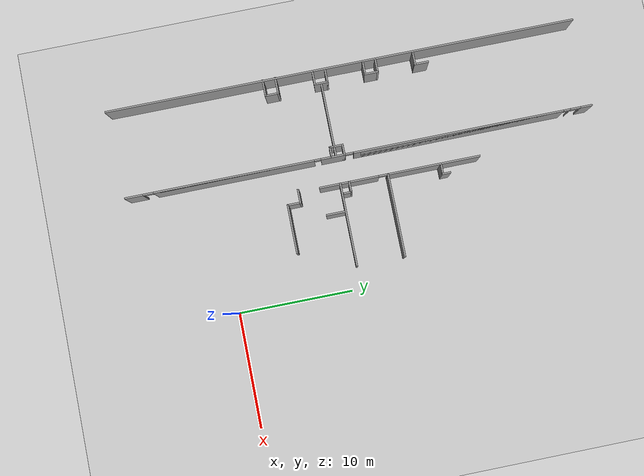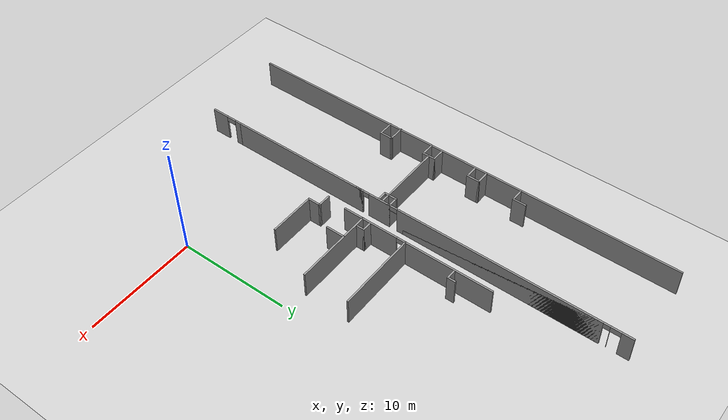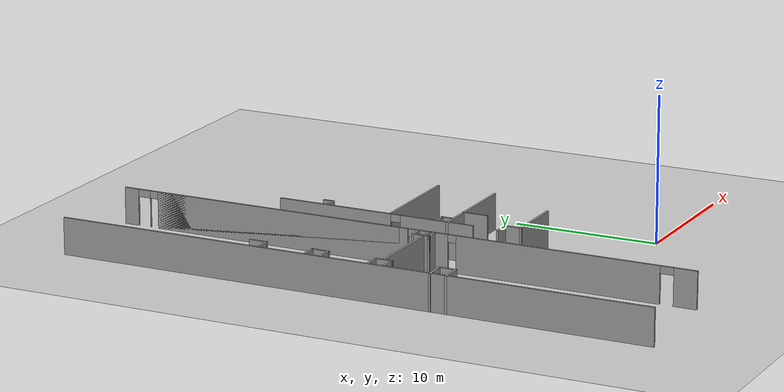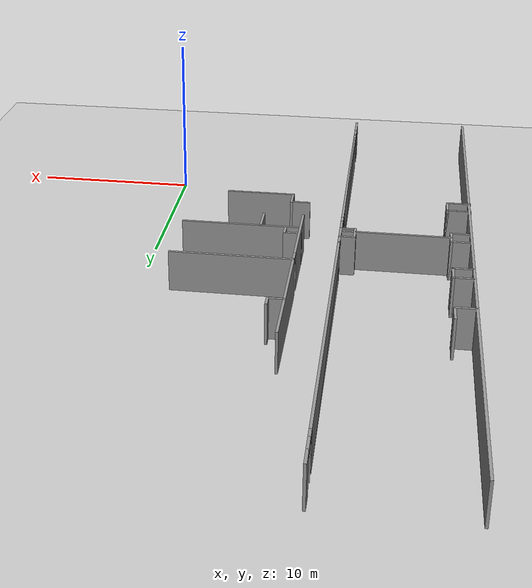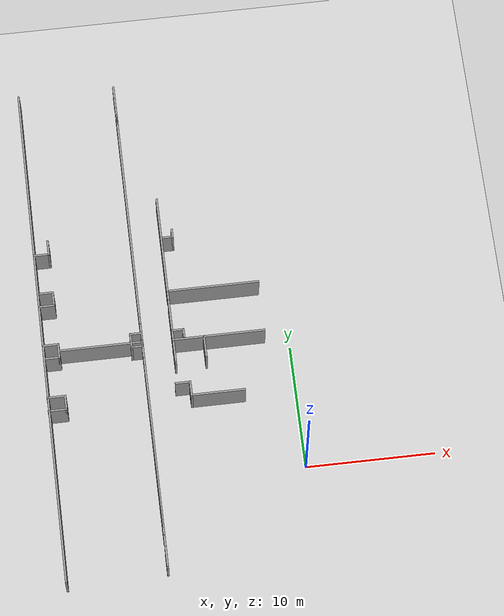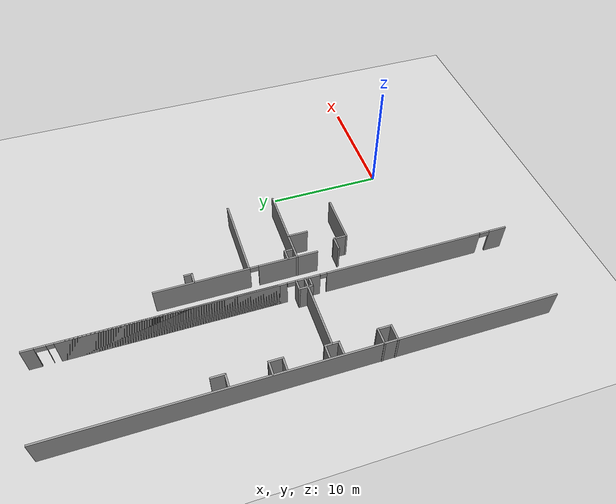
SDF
<sdf version="1.6">
 <world name="default">
  <model name="ground_plane">
   <static>1</static>
   <link name="link">
    <collision name="collision">
     <geometry><plane><normal>0 0 1</normal><size>100 100</size></plane></geometry>
     <surface>
      <contact><collide_bitmask>65535</collide_bitmask></contact>
      <friction><ode><mu>100</mu><mu2>50</mu2></ode></friction>
     </surface>
    </collision>
    <visual name="visual">
     <cast_shadows>0</cast_shadows>
     <geometry><plane><normal>0 0 1</normal><size>100 100</size></plane></geometry>
     <material>
      <script><uri>file://media/materials/scripts/gazebo.material</uri><name>Gazebo/Grey</name></script>
     </material>
    </visual>
   </link>
  </model>
  <model name="Tsudanuma_2-3-with_door">
   <pose>11.7222 12.8329 0 0 -0 0</pose>
   <link name="Wall_0">
    <collision name="Wall_0_Collision">
     <geometry><box><size>41.115 0.15 2.5</size></box></geometry>
     <pose>0 0 1.25 0 -0 0</pose>
    </collision>
    <visual name="Wall_0_Visual">
     <pose>0 0 1.25 0 -0 0</pose>
     <geometry><box><size>41.115 0.15 2.5</size></box></geometry>
     <material>
      <script><uri>file://media/materials/scripts/gazebo.material</uri><name>Gazebo/Grey</name></script>
      <ambient>1 1 1 1</ambient>
     </material>
     <meta><layer>0</layer></meta>
    </visual>
    <pose>-30.8385 -0.07469 0 0 -0 -1.5708</pose>
   </link>
   <link name="Wall_120">
    <pose>-20.7694 3.09917 0 0 -0 -1.5708</pose>
    <visual name="Wall_120_Visual_0">
     <pose>-2.94482 0 1.25 0 -0 0</pose>
     <geometry><box><size>8.11037 0.15 2.5</size></box></geometry>
     <material>
      <script><uri>file://media/materials/scripts/gazebo.material</uri><name>Gazebo/Grey</name></script>
      <ambient>1 1 1 1</ambient>
     </material>
     <meta><layer>0</layer></meta>
    </visual>
    <collision name="Wall_120_Collision_0">
     <geometry><box><size>8.11037 0.15 2.5</size></box></geometry>
     <pose>-2.94482 0 1.25 0 -0 0</pose>
    </collision>
    <visual name="Wall_120_Visual_1">
     <pose>4.41443 0 1.25 0 -0 0</pose>
     <geometry><box><size>5.17113 0.15 2.5</size></box></geometry>
     <material>
      <script><uri>file://media/materials/scripts/gazebo.material</uri><name>Gazebo/Grey</name></script>
      <ambient>1 1 1 1</ambient>
     </material>
     <meta><layer>0</layer></meta>
    </visual>
    <collision name="Wall_120_Collision_1">
     <geometry><box><size>5.17113 0.15 2.5</size></box></geometry>
     <pose>4.41443 0 1.25 0 -0 0</pose>
    </collision>
    <visual name="Wall_120_Visual_2">
     <pose>1.46962 0 2.25 0 -0 0</pose>
     <geometry><box><size>0.7185 0.15 0.5</size></box></geometry>
     <material>
      <script><uri>file://media/materials/scripts/gazebo.material</uri><name>Gazebo/Grey</name></script>
      <ambient>1 1 1 1</ambient>
     </material>
     <meta><layer>0</layer></meta>
    </visual>
    <collision name="Wall_120_Collision_2">
     <geometry><box><size>0.7185 0.15 0.5</size></box></geometry>
     <pose>1.46962 0 2.25 0 -0 0</pose>
    </collision>
   </link>
   <link name="Wall_130">
    <collision name="Wall_130_Collision">
     <geometry><box><size>7.25 0.15 2.5</size></box></geometry>
     <pose>0 0 1.25 0 -0 0</pose>
    </collision>
    <visual name="Wall_130_Visual">
     <pose>0 0 1.25 0 -0 0</pose>
     <geometry><box><size>7.25 0.15 2.5</size></box></geometry>
     <material>
      <script><uri>file://media/materials/scripts/gazebo.material</uri><name>Gazebo/Grey</name></script>
      <ambient>1 1 1 1</ambient>
     </material>
     <meta><layer>0</layer></meta>
    </visual>
    <pose>-17.2305 -2.06927 0 0 -0 0</pose>
   </link>
   <link name="Wall_132">
    <collision name="Wall_132_Collision">
     <geometry><box><size>1 0.15 2.5</size></box></geometry>
     <pose>0 0 1.25 0 -0 0</pose>
    </collision>
    <visual name="Wall_132_Visual">
     <pose>0 0 1.25 0 -0 0</pose>
     <geometry><box><size>1 0.15 2.5</size></box></geometry>
     <material>
      <script><uri>file://media/materials/scripts/gazebo.material</uri><name>Gazebo/Grey</name></script>
      <ambient>1 1 1 1</ambient>
     </material>
     <meta><layer>0</layer></meta>
    </visual>
    <pose>-20.3175 -1.29143 0 0 -0 0</pose>
   </link>
   <link name="Wall_133">
    <collision name="Wall_133_Collision">
     <geometry><box><size>0.75 0.15 2.5</size></box></geometry>
     <pose>0 0 1.25 0 -0 0</pose>
    </collision>
    <visual name="Wall_133_Visual">
     <pose>0 0 1.25 0 -0 0</pose>
     <geometry><box><size>0.75 0.15 2.5</size></box></geometry>
     <material>
      <script><uri>file://media/materials/scripts/gazebo.material</uri><name>Gazebo/Grey</name></script>
      <ambient>1 1 1 1</ambient>
     </material>
     <meta><layer>0</layer></meta>
    </visual>
    <pose>-19.8925 -1.59143 0 0 -0 -1.5708</pose>
   </link>
   <link name="Wall_138">
    <collision name="Wall_138_Collision">
     <geometry><box><size>1.75 0.15 2.5</size></box></geometry>
     <pose>0 0 1.25 0 -0 0</pose>
    </collision>
    <visual name="Wall_138_Visual">
     <pose>0 0 1.25 0 -0 0</pose>
     <geometry><box><size>1.75 0.15 2.5</size></box></geometry>
     <material>
      <script><uri>file://media/materials/scripts/gazebo.material</uri><name>Gazebo/Grey</name></script>
      <ambient>1 1 1 1</ambient>
     </material>
     <meta><layer>0</layer></meta>
    </visual>
    <pose>-18.3711 -2.90721 0 0 -0 -1.5708</pose>
   </link>
   <link name="Wall_140">
    <collision name="Wall_140_Collision">
     <geometry><box><size>4.25 0.15 2.5</size></box></geometry>
     <pose>0 0 1.25 0 -0 0</pose>
    </collision>
    <visual name="Wall_140_Visual">
     <pose>0 0 1.25 0 -0 0</pose>
     <geometry><box><size>4.25 0.15 2.5</size></box></geometry>
     <material>
      <script><uri>file://media/materials/scripts/gazebo.material</uri><name>Gazebo/Grey</name></script>
      <ambient>1 1 1 1</ambient>
     </material>
     <meta><layer>0</layer></meta>
    </visual>
    <pose>-17.8074 -6.80767 0 0 -0 3.14159</pose>
   </link>
   <link name="Wall_141">
    <collision name="Wall_141_Collision">
     <geometry><box><size>1.25 0.15 2.5</size></box></geometry>
     <pose>0 0 1.25 0 -0 0</pose>
    </collision>
    <visual name="Wall_141_Visual">
     <pose>0 0 1.25 0 -0 0</pose>
     <geometry><box><size>1.25 0.15 2.5</size></box></geometry>
     <material>
      <script><uri>file://media/materials/scripts/gazebo.material</uri><name>Gazebo/Grey</name></script>
      <ambient>1 1 1 1</ambient>
     </material>
     <meta><layer>0</layer></meta>
    </visual>
    <pose>-19.8574 -6.25767 0 0 -0 1.5708</pose>
   </link>
   <link name="Wall_142">
    <collision name="Wall_142_Collision">
     <geometry><box><size>1.25 0.15 2.5</size></box></geometry>
     <pose>0 0 1.25 0 -0 0</pose>
    </collision>
    <visual name="Wall_142_Visual">
     <pose>0 0 1.25 0 -0 0</pose>
     <geometry><box><size>1.25 0.15 2.5</size></box></geometry>
     <material>
      <script><uri>file://media/materials/scripts/gazebo.material</uri><name>Gazebo/Grey</name></script>
      <ambient>1 1 1 1</ambient>
     </material>
     <meta><layer>0</layer></meta>
    </visual>
    <pose>-20.4074 -5.70767 0 0 -0 3.14159</pose>
   </link>
   <link name="Wall_32">
    <pose>-23.1721 0.089962 0 0 -0 1.5708</pose>
    <visual name="Wall_32_Visual_0">
     <pose>-19.5884 0 1.25 0 -0 0</pose>
     <geometry><box><size>1.57322 0.15 2.5</size></box></geometry>
     <material>
      <script><uri>file://media/materials/scripts/gazebo.material</uri><name>Gazebo/Grey</name></script>
      <ambient>1 1 1 1</ambient>
     </material>
     <meta><layer>0</layer></meta>
    </visual>
    <collision name="Wall_32_Collision_0">
     <geometry><box><size>1.57322 0.15 2.5</size></box></geometry>
     <pose>-19.5884 0 1.25 0 -0 0</pose>
    </collision>
    <visual name="Wall_32_Visual_1">
     <pose>-10.9195 0 1.25 0 -0 0</pose>
     <geometry><box><size>13.9449 0.15 2.5</size></box></geometry>
     <material>
      <script><uri>file://media/materials/scripts/gazebo.material</uri><name>Gazebo/Grey</name></script>
      <ambient>1 1 1 1</ambient>
     </material>
     <meta><layer>0</layer></meta>
    </visual>
    <collision name="Wall_32_Collision_1">
     <geometry><box><size>13.9449 0.15 2.5</size></box></geometry>
     <pose>-10.9195 0 1.25 0 -0 0</pose>
    </collision>
    <visual name="Wall_32_Visual_2">
     <pose>-10.6328 0 1.25 0 -0 0</pose>
     <geometry><box><size>13.3715 0.15 2.5</size></box></geometry>
     <material>
      <script><uri>file://media/materials/scripts/gazebo.material</uri><name>Gazebo/Grey</name></script>
      <ambient>1 1 1 1</ambient>
     </material>
     <meta><layer>0</layer></meta>
    </visual>
    <collision name="Wall_32_Collision_2">
     <geometry><box><size>13.3715 0.15 2.5</size></box></geometry>
     <pose>-10.6328 0 1.25 0 -0 0</pose>
    </collision>
    <visual name="Wall_32_Visual_3">
     <pose>-2.30756 0 1.25 0 -0 0</pose>
     <geometry><box><size>2.12716 0.15 2.5</size></box></geometry>
     <material>
      <script><uri>file://media/materials/scripts/gazebo.material</uri><name>Gazebo/Grey</name></script>
      <ambient>1 1 1 1</ambient>
     </material>
     <meta><layer>0</layer></meta>
    </visual>
    <collision name="Wall_32_Collision_3">
     <geometry><box><size>2.12716 0.15 2.5</size></box></geometry>
     <pose>-2.30756 0 1.25 0 -0 0</pose>
    </collision>
    <visual name="Wall_32_Visual_4">
     <pose>-1.86029 0 1.25 0 -0 0</pose>
     <geometry><box><size>1.23262 0.15 2.5</size></box></geometry>
     <material>
      <script><uri>file://media/materials/scripts/gazebo.material</uri><name>Gazebo/Grey</name></script>
      <ambient>1 1 1 1</ambient>
     </material>
     <meta><layer>0</layer></meta>
    </visual>
    <collision name="Wall_32_Collision_4">
     <geometry><box><size>1.23262 0.15 2.5</size></box></geometry>
     <pose>-1.86029 0 1.25 0 -0 0</pose>
    </collision>
    <visual name="Wall_32_Visual_5">
     <pose>8.66346 0 1.25 0 -0 0</pose>
     <geometry><box><size>18.4038 0.15 2.5</size></box></geometry>
     <material>
      <script><uri>file://media/materials/scripts/gazebo.material</uri><name>Gazebo/Grey</name></script>
      <ambient>1 1 1 1</ambient>
     </material>
     <meta><layer>0</layer></meta>
    </visual>
    <collision name="Wall_32_Collision_5">
     <geometry><box><size>18.4038 0.15 2.5</size></box></geometry>
     <pose>8.66346 0 1.25 0 -0 0</pose>
    </collision>
    <visual name="Wall_32_Visual_6">
     <pose>8.97461 0 1.25 0 -0 0</pose>
     <geometry><box><size>17.7815 0.15 2.5</size></box></geometry>
     <material>
      <script><uri>file://media/materials/scripts/gazebo.material</uri><name>Gazebo/Grey</name></script>
      <ambient>1 1 1 1</ambient>
     </material>
     <meta><layer>0</layer></meta>
    </visual>
    <collision name="Wall_32_Collision_6">
     <geometry><box><size>17.7815 0.15 2.5</size></box></geometry>
     <pose>8.97461 0 1.25 0 -0 0</pose>
    </collision>
    <visual name="Wall_32_Visual_7">
     <pose>18.4418 0 1.25 0 -0 0</pose>
     <geometry><box><size>0.001017 0.15 2.5</size></box></geometry>
     <material>
      <script><uri>file://media/materials/scripts/gazebo.material</uri><name>Gazebo/Grey</name></script>
      <ambient>1 1 1 1</ambient>
     </material>
     <meta><layer>0</layer></meta>
    </visual>
    <collision name="Wall_32_Collision_7">
     <geometry><box><size>0.001017 0.15 2.5</size></box></geometry>
     <pose>18.4418 0 1.25 0 -0 0</pose>
    </collision>
    <visual name="Wall_32_Visual_8">
     <pose>19.8586 0 1.25 0 -0 0</pose>
     <geometry><box><size>1.03272 0.15 2.5</size></box></geometry>
     <material>
      <script><uri>file://media/materials/scripts/gazebo.material</uri><name>Gazebo/Grey</name></script>
      <ambient>1 1 1 1</ambient>
     </material>
     <meta><layer>0</layer></meta>
    </visual>
    <collision name="Wall_32_Collision_8">
     <geometry><box><size>1.03272 0.15 2.5</size></box></geometry>
     <pose>19.8586 0 1.25 0 -0 0</pose>
    </collision>
    <visual name="Wall_32_Visual_9">
     <pose>-18.3533 0 2.25 0 -0 0</pose>
     <geometry><box><size>0.896961 0.15 0.5</size></box></geometry>
     <material>
      <script><uri>file://media/materials/scripts/gazebo.material</uri><name>Gazebo/Grey</name></script>
      <ambient>1 1 1 1</ambient>
     </material>
     <meta><layer>0</layer></meta>
    </visual>
    <collision name="Wall_32_Collision_9">
     <geometry><box><size>0.896961 0.15 0.5</size></box></geometry>
     <pose>-18.3533 0 2.25 0 -0 0</pose>
    </collision>
    <visual name="Wall_32_Visual_10">
     <pose>-3.66182 0 2.25 0 -0 0</pose>
     <geometry><box><size>0.570428 0.15 0.5</size></box></geometry>
     <material>
      <script><uri>file://media/materials/scripts/gazebo.material</uri><name>Gazebo/Grey</name></script>
      <ambient>1 1 1 1</ambient>
     </material>
     <meta><layer>0</layer></meta>
    </visual>
    <collision name="Wall_32_Collision_10">
     <geometry><box><size>0.570428 0.15 0.5</size></box></geometry>
     <pose>-3.66182 0 2.25 0 -0 0</pose>
    </collision>
    <visual name="Wall_32_Visual_11">
     <pose>-3.66182 0 2.25 0 -0 0</pose>
     <geometry><box><size>0.570428 0.15 0.5</size></box></geometry>
     <material>
      <script><uri>file://media/materials/scripts/gazebo.material</uri><name>Gazebo/Grey</name></script>
      <ambient>1 1 1 1</ambient>
     </material>
     <meta><layer>0</layer></meta>
    </visual>
    <collision name="Wall_32_Collision_11">
     <geometry><box><size>0.570428 0.15 0.5</size></box></geometry>
     <pose>-3.66182 0 2.25 0 -0 0</pose>
    </collision>
    <visual name="Wall_32_Visual_12">
     <pose>-0.900425 0 2.25 0 -0 0</pose>
     <geometry><box><size>0.687107 0.15 0.5</size></box></geometry>
     <material>
      <script><uri>file://media/materials/scripts/gazebo.material</uri><name>Gazebo/Grey</name></script>
      <ambient>1 1 1 1</ambient>
     </material>
     <meta><layer>0</layer></meta>
    </visual>
    <collision name="Wall_32_Collision_12">
     <geometry><box><size>0.687107 0.15 0.5</size></box></geometry>
     <pose>-0.900425 0 2.25 0 -0 0</pose>
    </collision>
    <visual name="Wall_32_Visual_13">
     <pose>-0.900425 0 2.25 0 -0 0</pose>
     <geometry><box><size>0.687107 0.15 0.5</size></box></geometry>
     <material>
      <script><uri>file://media/materials/scripts/gazebo.material</uri><name>Gazebo/Grey</name></script>
      <ambient>1 1 1 1</ambient>
     </material>
     <meta><layer>0</layer></meta>
    </visual>
    <collision name="Wall_32_Collision_13">
     <geometry><box><size>0.687107 0.15 0.5</size></box></geometry>
     <pose>-0.900425 0 2.25 0 -0 0</pose>
    </collision>
    <visual name="Wall_32_Visual_14">
     <pose>18.1533 0 2.25 0 -0 0</pose>
     <geometry><box><size>0.575893 0.15 0.5</size></box></geometry>
     <material>
      <script><uri>file://media/materials/scripts/gazebo.material</uri><name>Gazebo/Grey</name></script>
      <ambient>1 1 1 1</ambient>
     </material>
     <meta><layer>0</layer></meta>
    </visual>
    <collision name="Wall_32_Collision_14">
     <geometry><box><size>0.575893 0.15 0.5</size></box></geometry>
     <pose>18.1533 0 2.25 0 -0 0</pose>
    </collision>
    <visual name="Wall_32_Visual_15">
     <pose>18.1533 0 2.25 0 -0 0</pose>
     <geometry><box><size>0.575893 0.15 0.5</size></box></geometry>
     <material>
      <script><uri>file://media/materials/scripts/gazebo.material</uri><name>Gazebo/Grey</name></script>
      <ambient>1 1 1 1</ambient>
     </material>
     <meta><layer>0</layer></meta>
    </visual>
    <collision name="Wall_32_Collision_15">
     <geometry><box><size>0.575893 0.15 0.5</size></box></geometry>
     <pose>18.1533 0 2.25 0 -0 0</pose>
    </collision>
    <visual name="Wall_32_Visual_16">
     <pose>18.8923 0 2.25 0 -0 0</pose>
     <geometry><box><size>0.9 0.15 0.5</size></box></geometry>
     <material>
      <script><uri>file://media/materials/scripts/gazebo.material</uri><name>Gazebo/Grey</name></script>
      <ambient>1 1 1 1</ambient>
     </material>
     <meta><layer>0</layer></meta>
    </visual>
    <collision name="Wall_32_Collision_16">
     <geometry><box><size>0.9 0.15 0.5</size></box></geometry>
     <pose>18.8923 0 2.25 0 -0 0</pose>
    </collision>
   </link>
   <link name="Wall_464">
    <collision name="Wall_464_Collision">
     <geometry><box><size>1.5 0.15 2.5</size></box></geometry>
     <pose>0 0 1.25 0 -0 0</pose>
    </collision>
    <visual name="Wall_464_Visual">
     <pose>0 0 1.25 0 -0 0</pose>
     <geometry><box><size>1.5 0.15 2.5</size></box></geometry>
     <material>
      <script><uri>file://media/materials/scripts/gazebo.material</uri><name>Gazebo/Grey</name></script>
      <ambient>1 1 1 1</ambient>
     </material>
     <meta><layer>0</layer></meta>
    </visual>
    <pose>-30.1953 -6.84893 0 0 -0 0</pose>
   </link>
   <link name="Wall_465">
    <collision name="Wall_465_Collision">
     <geometry><box><size>1.25 0.15 2.5</size></box></geometry>
     <pose>0 0 1.25 0 -0 0</pose>
    </collision>
    <visual name="Wall_465_Visual">
     <pose>0 0 1.25 0 -0 0</pose>
     <geometry><box><size>1.25 0.15 2.5</size></box></geometry>
     <material>
      <script><uri>file://media/materials/scripts/gazebo.material</uri><name>Gazebo/Grey</name></script>
      <ambient>1 1 1 1</ambient>
     </material>
     <meta><layer>0</layer></meta>
    </visual>
    <pose>-29.5203 -6.29893 0 0 -0 1.5708</pose>
   </link>
   <link name="Wall_466">
    <collision name="Wall_466_Collision">
     <geometry><box><size>1.5 0.15 2.5</size></box></geometry>
     <pose>0 0 1.25 0 -0 0</pose>
    </collision>
    <visual name="Wall_466_Visual">
     <pose>0 0 1.25 0 -0 0</pose>
     <geometry><box><size>1.5 0.15 2.5</size></box></geometry>
     <material>
      <script><uri>file://media/materials/scripts/gazebo.material</uri><name>Gazebo/Grey</name></script>
      <ambient>1 1 1 1</ambient>
     </material>
     <meta><layer>0</layer></meta>
    </visual>
    <pose>-30.1953 -5.74893 0 0 -0 3.14159</pose>
   </link>
   <link name="Wall_468">
    <collision name="Wall_468_Collision">
     <geometry><box><size>1.25 0.15 2.5</size></box></geometry>
     <pose>0 0 1.25 0 -0 0</pose>
    </collision>
    <visual name="Wall_468_Visual">
     <pose>0 0 1.25 0 -0 0</pose>
     <geometry><box><size>1.25 0.15 2.5</size></box></geometry>
     <material>
      <script><uri>file://media/materials/scripts/gazebo.material</uri><name>Gazebo/Grey</name></script>
      <ambient>1 1 1 1</ambient>
     </material>
     <meta><layer>0</layer></meta>
    </visual>
    <pose>-30.2135 -2.5084 0 0 -0 0</pose>
   </link>
   <link name="Wall_470">
    <collision name="Wall_470_Collision">
     <geometry><box><size>1.25 0.15 2.5</size></box></geometry>
     <pose>0 0 1.25 0 -0 0</pose>
    </collision>
    <visual name="Wall_470_Visual">
     <pose>0 0 1.25 0 -0 0</pose>
     <geometry><box><size>1.25 0.15 2.5</size></box></geometry>
     <material>
      <script><uri>file://media/materials/scripts/gazebo.material</uri><name>Gazebo/Grey</name></script>
      <ambient>1 1 1 1</ambient>
     </material>
     <meta><layer>0</layer></meta>
    </visual>
    <pose>-29.6635 -1.9584 0 0 -0 1.5708</pose>
   </link>
   <link name="Wall_471">
    <collision name="Wall_471_Collision">
     <geometry><box><size>1.25 0.15 2.5</size></box></geometry>
     <pose>0 0 1.25 0 -0 0</pose>
    </collision>
    <visual name="Wall_471_Visual">
     <pose>0 0 1.25 0 -0 0</pose>
     <geometry><box><size>1.25 0.15 2.5</size></box></geometry>
     <material>
      <script><uri>file://media/materials/scripts/gazebo.material</uri><name>Gazebo/Grey</name></script>
      <ambient>1 1 1 1</ambient>
     </material>
     <meta><layer>0</layer></meta>
    </visual>
    <pose>-30.2135 -1.4084 0 0 -0 3.14159</pose>
   </link>
   <link name="Wall_474">
    <collision name="Wall_474_Collision">
     <geometry><box><size>1.25 0.15 2.5</size></box></geometry>
     <pose>0 0 1.25 0 -0 0</pose>
    </collision>
    <visual name="Wall_474_Visual">
     <pose>0 0 1.25 0 -0 0</pose>
     <geometry><box><size>1.25 0.15 2.5</size></box></geometry>
     <material>
      <script><uri>file://media/materials/scripts/gazebo.material</uri><name>Gazebo/Grey</name></script>
      <ambient>1 1 1 1</ambient>
     </material>
     <meta><layer>0</layer></meta>
    </visual>
    <pose>-30.2299 1.90612 0 0 -0 0</pose>
   </link>
   <link name="Wall_475">
    <collision name="Wall_475_Collision">
     <geometry><box><size>1.25 0.15 2.5</size></box></geometry>
     <pose>0 0 1.25 0 -0 0</pose>
    </collision>
    <visual name="Wall_475_Visual">
     <pose>0 0 1.25 0 -0 0</pose>
     <geometry><box><size>1.25 0.15 2.5</size></box></geometry>
     <material>
      <script><uri>file://media/materials/scripts/gazebo.material</uri><name>Gazebo/Grey</name></script>
      <ambient>1 1 1 1</ambient>
     </material>
     <meta><layer>0</layer></meta>
    </visual>
    <pose>-29.6799 2.45612 0 0 -0 1.5708</pose>
   </link>
   <link name="Wall_476">
    <collision name="Wall_476_Collision">
     <geometry><box><size>1.25 0.15 2.5</size></box></geometry>
     <pose>0 0 1.25 0 -0 0</pose>
    </collision>
    <visual name="Wall_476_Visual">
     <pose>0 0 1.25 0 -0 0</pose>
     <geometry><box><size>1.25 0.15 2.5</size></box></geometry>
     <material>
      <script><uri>file://media/materials/scripts/gazebo.material</uri><name>Gazebo/Grey</name></script>
      <ambient>1 1 1 1</ambient>
     </material>
     <meta><layer>0</layer></meta>
    </visual>
    <pose>-30.2299 3.00612 0 0 -0 3.14159</pose>
   </link>
   <link name="Wall_478">
    <collision name="Wall_478_Collision">
     <geometry><box><size>1.25 0.15 2.5</size></box></geometry>
     <pose>0 0 1.25 0 -0 0</pose>
    </collision>
    <visual name="Wall_478_Visual">
     <pose>0 0 1.25 0 -0 0</pose>
     <geometry><box><size>1.25 0.15 2.5</size></box></geometry>
     <material>
      <script><uri>file://media/materials/scripts/gazebo.material</uri><name>Gazebo/Grey</name></script>
      <ambient>1 1 1 1</ambient>
     </material>
     <meta><layer>0</layer></meta>
    </visual>
    <pose>-30.2299 6.30419 0 0 -0 0</pose>
   </link>
   <link name="Wall_479">
    <collision name="Wall_479_Collision">
     <geometry><box><size>1.25 0.15 2.5</size></box></geometry>
     <pose>0 0 1.25 0 -0 0</pose>
    </collision>
    <visual name="Wall_479_Visual">
     <pose>0 0 1.25 0 -0 0</pose>
     <geometry><box><size>1.25 0.15 2.5</size></box></geometry>
     <material>
      <script><uri>file://media/materials/scripts/gazebo.material</uri><name>Gazebo/Grey</name></script>
      <ambient>1 1 1 1</ambient>
     </material>
     <meta><layer>0</layer></meta>
    </visual>
    <pose>-29.6799 6.85419 0 0 -0 1.5708</pose>
   </link>
   <link name="Wall_503">
    <collision name="Wall_503_Collision">
     <geometry><box><size>1 0.15 2.5</size></box></geometry>
     <pose>0 0 1.25 0 -0 0</pose>
    </collision>
    <visual name="Wall_503_Visual">
     <pose>0 0 1.25 0 -0 0</pose>
     <geometry><box><size>1 0.15 2.5</size></box></geometry>
     <material>
      <script><uri>file://media/materials/scripts/gazebo.material</uri><name>Gazebo/Grey</name></script>
      <ambient>1 1 1 1</ambient>
     </material>
     <meta><layer>0</layer></meta>
    </visual>
    <pose>-23.6051 -1.22621 0 0 -0 3.14159</pose>
   </link>
   <link name="Wall_504">
    <collision name="Wall_504_Collision">
     <geometry><box><size>1.25 0.15 2.5</size></box></geometry>
     <pose>0 0 1.25 0 -0 0</pose>
    </collision>
    <visual name="Wall_504_Visual">
     <pose>0 0 1.25 0 -0 0</pose>
     <geometry><box><size>1.25 0.15 2.5</size></box></geometry>
     <material>
      <script><uri>file://media/materials/scripts/gazebo.material</uri><name>Gazebo/Grey</name></script>
      <ambient>1 1 1 1</ambient>
     </material>
     <meta><layer>0</layer></meta>
    </visual>
    <pose>-24.0301 -1.77621 0 0 -0 -1.5708</pose>
   </link>
   <link name="Wall_505">
    <collision name="Wall_505_Collision">
     <geometry><box><size>1 0.15 2.5</size></box></geometry>
     <pose>0 0 1.25 0 -0 0</pose>
    </collision>
    <visual name="Wall_505_Visual">
     <pose>0 0 1.25 0 -0 0</pose>
     <geometry><box><size>1 0.15 2.5</size></box></geometry>
     <material>
      <script><uri>file://media/materials/scripts/gazebo.material</uri><name>Gazebo/Grey</name></script>
      <ambient>1 1 1 1</ambient>
     </material>
     <meta><layer>0</layer></meta>
    </visual>
    <pose>-23.6051 -2.32621 0 0 -0 0</pose>
   </link>
   <link name="Wall_513">
    <collision name="Wall_513_Collision">
     <geometry><box><size>7.25 0.15 2.5</size></box></geometry>
     <pose>0 0 1.25 0 -0 0</pose>
    </collision>
    <visual name="Wall_513_Visual">
     <pose>0 0 1.25 0 -0 0</pose>
     <geometry><box><size>7.25 0.15 2.5</size></box></geometry>
     <material>
      <script><uri>file://media/materials/scripts/gazebo.material</uri><name>Gazebo/Grey</name></script>
      <ambient>1 1 1 1</ambient>
     </material>
     <meta><layer>0</layer></meta>
    </visual>
    <pose>-17.2038 2.07237 0 0 -0 0</pose>
   </link>
   <link name="Wall_520">
    <collision name="Wall_520_Collision">
     <geometry><box><size>0.75 0.15 2.5</size></box></geometry>
     <pose>0 0 1.25 0 -0 0</pose>
    </collision>
    <visual name="Wall_520_Visual">
     <pose>0 0 1.25 0 -0 0</pose>
     <geometry><box><size>0.75 0.15 2.5</size></box></geometry>
     <material>
      <script><uri>file://media/materials/scripts/gazebo.material</uri><name>Gazebo/Grey</name></script>
      <ambient>1 1 1 1</ambient>
     </material>
     <meta><layer>0</layer></meta>
    </visual>
    <pose>-19.8743 6.97595 0 0 -0 -1.5708</pose>
   </link>
   <link name="Wall_521">
    <collision name="Wall_521_Collision">
     <geometry><box><size>1 0.15 2.5</size></box></geometry>
     <pose>0 0 1.25 0 -0 0</pose>
    </collision>
    <visual name="Wall_521_Visual">
     <pose>0 0 1.25 0 -0 0</pose>
     <geometry><box><size>1 0.15 2.5</size></box></geometry>
     <material>
      <script><uri>file://media/materials/scripts/gazebo.material</uri><name>Gazebo/Grey</name></script>
      <ambient>1 1 1 1</ambient>
     </material>
     <meta><layer>0</layer></meta>
    </visual>
    <pose>-20.2994 6.67595 0 0 -0 3.14159</pose>
   </link>
   <link name="Wall_97">
    <collision name="Wall_97_Collision">
     <geometry><box><size>6.5 0.15 2.5</size></box></geometry>
     <pose>0 0 1.25 0 -0 0</pose>
    </collision>
    <visual name="Wall_97_Visual">
     <pose>0 0 1.25 0 -0 0</pose>
     <geometry><box><size>6.5 0.15 2.5</size></box></geometry>
     <material>
      <script><uri>file://media/materials/scripts/gazebo.material</uri><name>Gazebo/Grey</name></script>
      <ambient>1 1 1 1</ambient>
     </material>
     <meta><layer>0</layer></meta>
    </visual>
    <pose>-26.4473 -1.95995 0 0 -0 0</pose>
   </link>
   <static>1</static>
  </model>
 </world>
</sdf>
